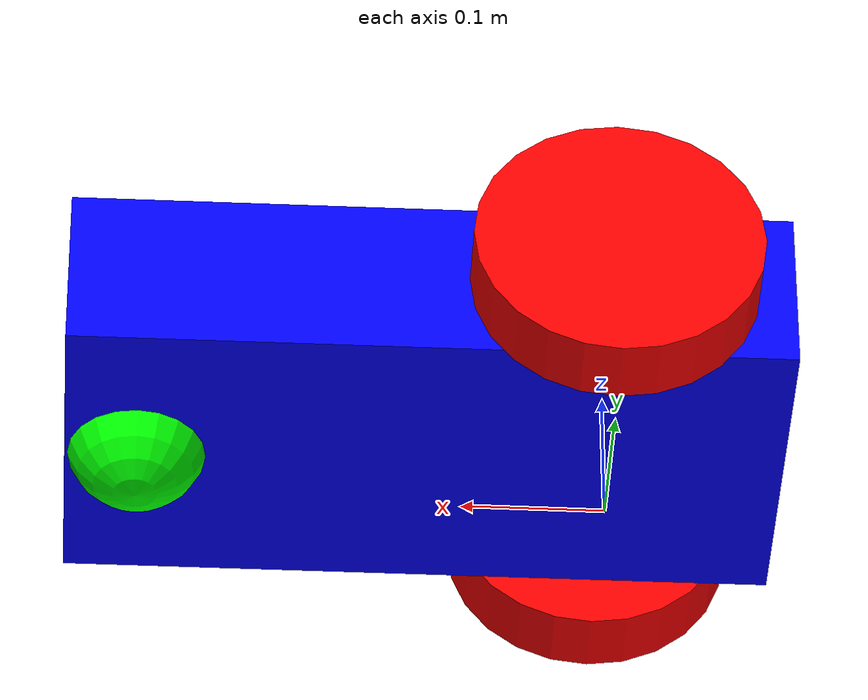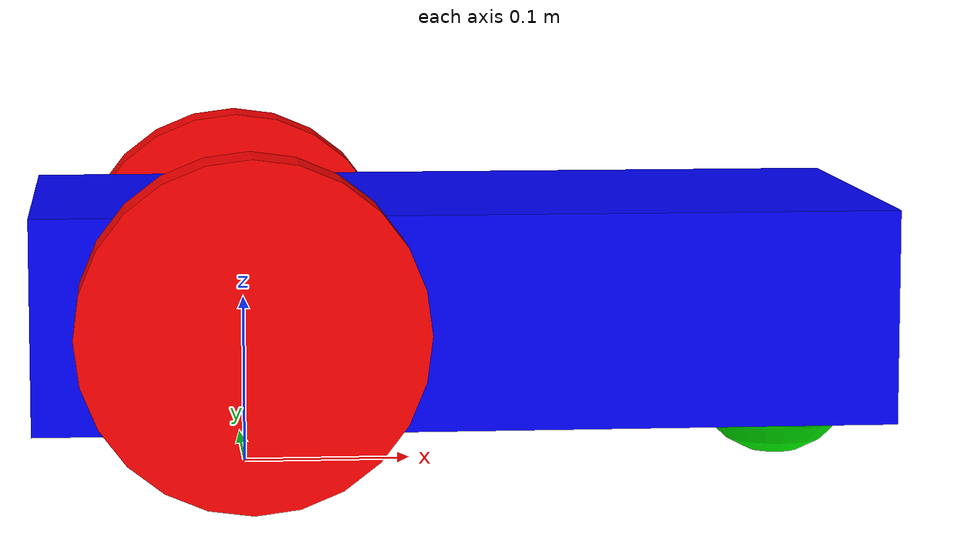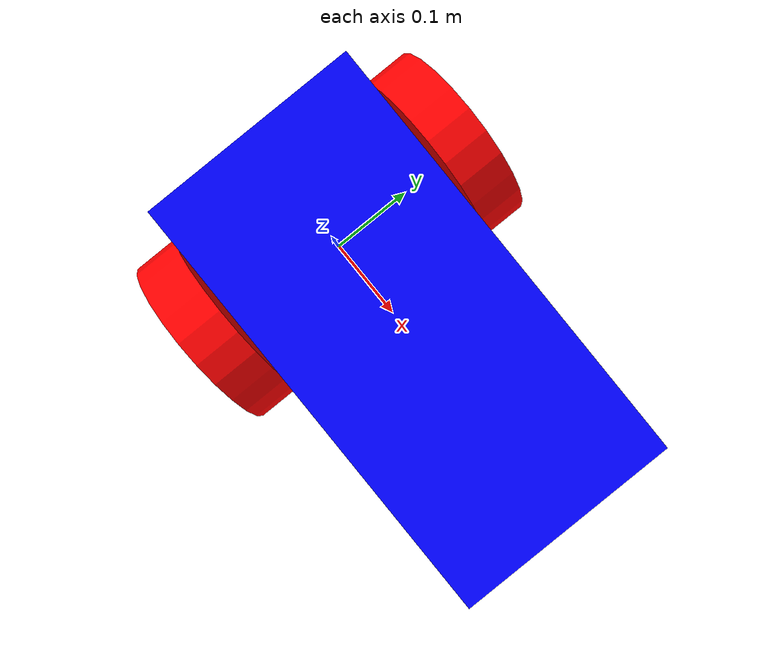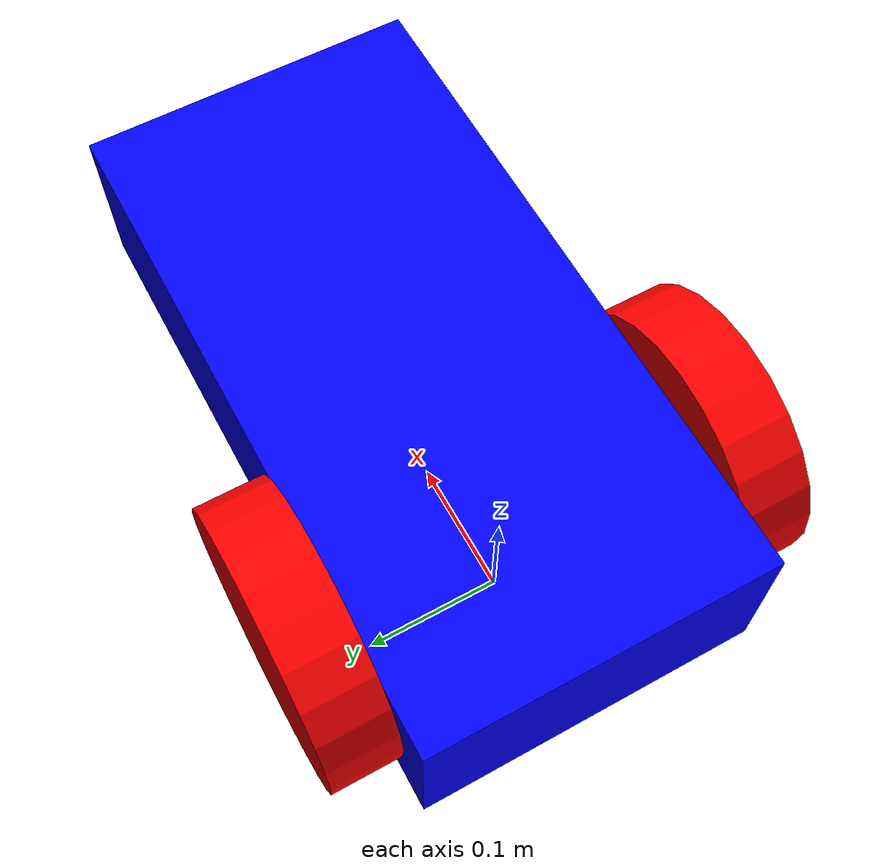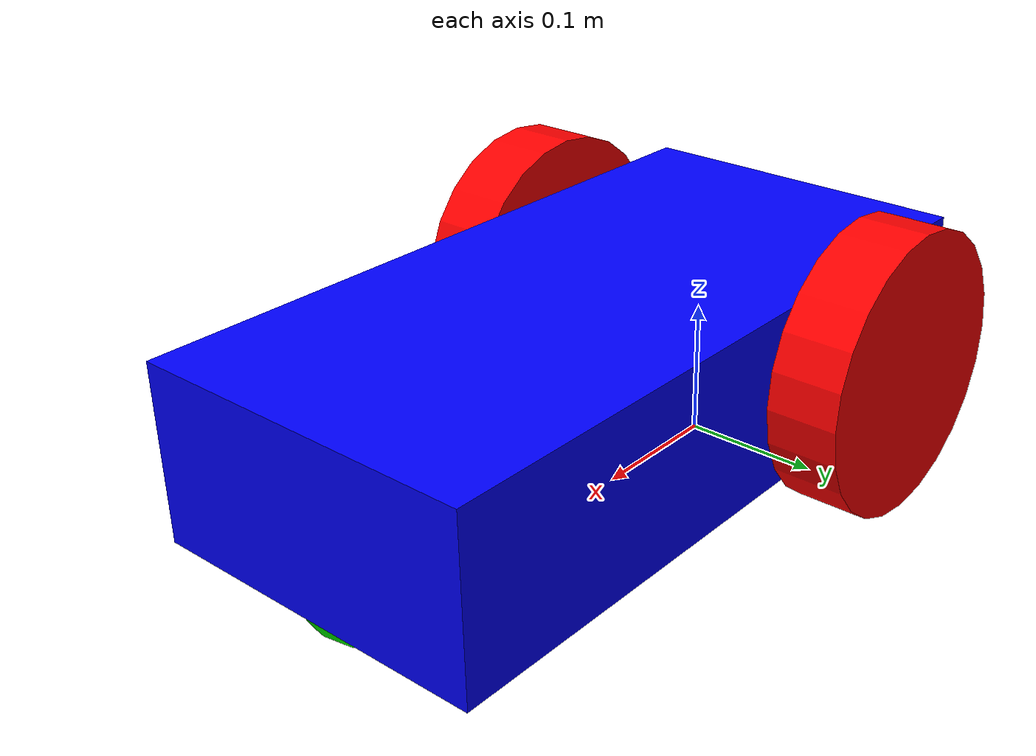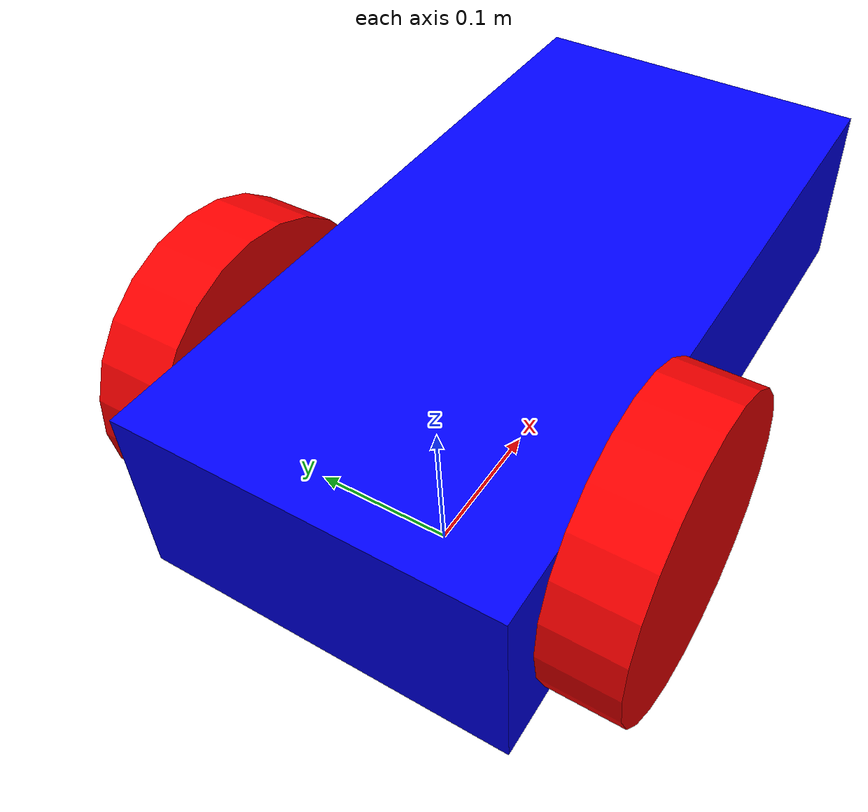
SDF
<?xml version="1.0" ?>
<sdf version="1.8">
  <model name='vehicle_blue' canonical_link='chassis'>
    <!-- Lidar frame -->
    <frame name="lidar_frame" attached_to='chassis'>
      <pose>0.2 0 0.125 0 0 0</pose>
    </frame>

    <!-- Karosszéria -->
    <link name='chassis'>
      <pose relative_to='__model__'>0.125 0 0.1 0 0 0</pose>
      <inertial>
        <mass>1.14395</mass>
        <inertia>
          <ixx>0.095329</ixx>
          <ixy>0</ixy>
          <ixz>0</ixz>
          <iyy>0.381317</iyy>
          <iyz>0</iyz>
          <izz>0.476646</izz>
        </inertia>
      </inertial>
      <visual name='visual'>
        <geometry>
          <box>
            <size>0.5 0.25 0.125</size>
          </box>
        </geometry>
        <material>
          <ambient>0.0 0.0 1.0 1</ambient>
          <diffuse>0.0 0.0 1.0 1</diffuse>
          <specular>0.0 0.0 1.0 1</specular>
        </material>
      </visual>
      <collision name='collision'>
        <geometry>
          <box>
            <size>0.5 0.25 0.125</size>
          </box>
        </geometry>
      </collision>

      <!-- 2D LiDAR -->
      <sensor name='gpu_lidar' type='gpu_lidar'>
        <pose relative_to='lidar_frame'>0 0 0 0 0 0</pose>
        <topic>lidar</topic>
        <update_rate>10</update_rate>
        <ray>
          <scan>
            <horizontal>
              <samples>640</samples>
              <resolution>1</resolution>
              <min_angle>-1.396263</min_angle>
              <max_angle>1.396263</max_angle>
            </horizontal>
            <vertical>
              <samples>1</samples>
              <resolution>0.01</resolution>
              <min_angle>0</min_angle>
              <max_angle>0</max_angle>
            </vertical>
          </scan>
          <range>
            <min>0.08</min>
            <max>10.0</max>
            <resolution>0.01</resolution>
          </range>
        </ray>
        <alwaysOn>1</alwaysOn>
        <visualize>true</visualize>
      </sensor>

      <!-- IMU -->
      <sensor name="imu_sensor" type="imu">
        <pose>0 0 0 0 0 0</pose>
        <always_on>1</always_on>
        <update_rate>1</update_rate>
        <visualize>true</visualize>
        <topic>imu</topic>
      </sensor>
    </link>

    <!-- 3D LiDAR link és szenzor -->
    <link name='lidar_3d_link'>
      <pose relative_to='chassis'>0.2 0 0.25 0 0 0</pose>

      <sensor name='gpu_lidar_3d' type='gpu_lidar'>
        <pose>0 0 0 0 0 0</pose>
        <topic>lidar_3d_points</topic>
        <update_rate>10</update_rate>
        <ray>
          <scan>
            <horizontal>
              <samples>1024</samples>
              <resolution>1</resolution>
              <min_angle>-3.14159</min_angle>
              <max_angle>3.14159</max_angle>
            </horizontal>
            <vertical>
              <samples>16</samples>
              <resolution>1</resolution>
              <min_angle>-0.261799</min_angle>
              <max_angle>0.261799</max_angle>
            </vertical>
          </scan>
          <range>
            <min>0.1</min>
            <max>30.0</max>
            <resolution>0.01</resolution>
          </range>
        </ray>
        <alwaysOn>1</alwaysOn>
        <visualize>true</visualize>
      </sensor>
    </link>

    <!-- Bal kerék -->
    <link name='left_wheel'>
      <pose relative_to="chassis">-0.125 0.15 0 -1.5707 0 0</pose>
      <inertial>
        <mass>1</mass>
        <inertia>
          <ixx>0.043333</ixx>
          <iyy>0.043333</iyy>
          <izz>0.08</izz>
        </inertia>
      </inertial>
      <visual name='visual'>
        <geometry>
          <cylinder>
            <radius>0.1</radius>
            <length>0.05</length>
          </cylinder>
        </geometry>
        <material>
          <ambient>1.0 0.0 0.0 1</ambient>
          <diffuse>1.0 0.0 0.0 1</diffuse>
        </material>
      </visual>
      <collision name='collision'>
        <geometry>
          <cylinder>
            <radius>0.1</radius>
            <length>0.05</length>
          </cylinder>
        </geometry>
      </collision>
    </link>

    <!-- Jobb kerék -->
    <link name='right_wheel'>
      <pose relative_to="chassis">-0.125 -0.15 0 -1.5707 0 0</pose>
      <inertial>
        <mass>1</mass>
        <inertia>
          <ixx>0.043333</ixx>
          <iyy>0.043333</iyy>
          <izz>0.08</izz>
        </inertia>
      </inertial>
      <visual name='visual'>
        <geometry>
          <cylinder>
            <radius>0.1</radius>
            <length>0.05</length>
          </cylinder>
        </geometry>
        <material>
          <ambient>1.0 0.0 0.0 1</ambient>
          <diffuse>1.0 0.0 0.0 1</diffuse>
        </material>
      </visual>
      <collision name='collision'>
        <geometry>
          <cylinder>
            <radius>0.1</radius>
            <length>0.05</length>
          </cylinder>
        </geometry>
      </collision>
    </link>

    <!-- Támasztó görgő -->
    <frame name="caster_frame" attached_to='chassis'>
      <pose>0.2 0 -0.05 0 0 0</pose>
    </frame>

    <link name='caster'>
      <pose relative_to='caster_frame'/>
      <inertial>
        <mass>1</mass>
        <inertia>
          <ixx>0.016</ixx>
          <iyy>0.016</iyy>
          <izz>0.016</izz>
        </inertia>
      </inertial>
      <visual name='visual'>
        <geometry>
          <sphere>
            <radius>0.05</radius>
          </sphere>
        </geometry>
        <material>
          <ambient>0.0 1.0 0.0 1</ambient>
          <diffuse>0.0 1.0 0.0 1</diffuse>
        </material>
      </visual>
      <collision name='collision'>
        <geometry>
          <sphere>
            <radius>0.05</radius>
          </sphere>
        </geometry>
      </collision>
    </link>

    <!-- Jointok -->
    <joint name='left_wheel_joint' type='revolute'>
      <pose relative_to='left_wheel'/>
      <parent>chassis</parent>
      <child>left_wheel</child>
      <axis>
        <xyz expressed_in='__model__'>0 1 0</xyz>
      </axis>
    </joint>

    <joint name='right_wheel_joint' type='revolute'>
      <pose relative_to='right_wheel'/>
      <parent>chassis</parent>
      <child>right_wheel</child>
      <axis>
        <xyz expressed_in='__model__'>0 1 0</xyz>
      </axis>
    </joint>

    <joint name='caster_wheel' type='ball'>
      <parent>chassis</parent>
      <child>caster</child>
    </joint>

    <!-- DiffDrive plugin -->
    <plugin
      filename="libignition-gazebo-diff-drive-system.so"
      name="ignition::gazebo::systems::DiffDrive">
      <left_joint>left_wheel_joint</left_joint>
      <right_joint>right_wheel_joint</right_joint>
      <wheel_separation>0.3</wheel_separation>
      <wheel_radius>0.1</wheel_radius>

      <odom_frame>odom</odom_frame>
      <odom_publish_frequency>30</odom_publish_frequency>
      <odometry_topic>odom</odometry_topic>

      <frame_id>odom</frame_id>
      <child_frame_id>base_link</child_frame_id>

      <publish_odom>true</publish_odom>
      <publish_odom_tf>false</publish_odom_tf> <!-- false -->

      <topic>cmd_vel</topic>
    </plugin>
  </model>
</sdf>
